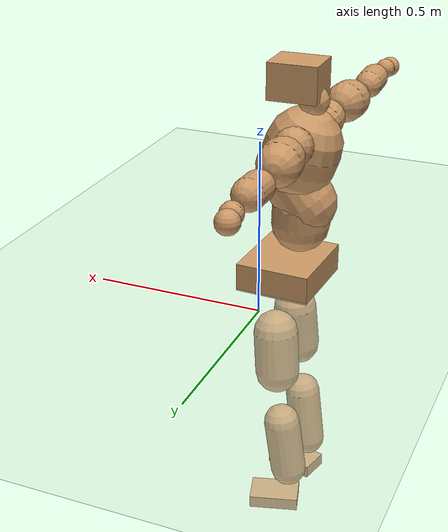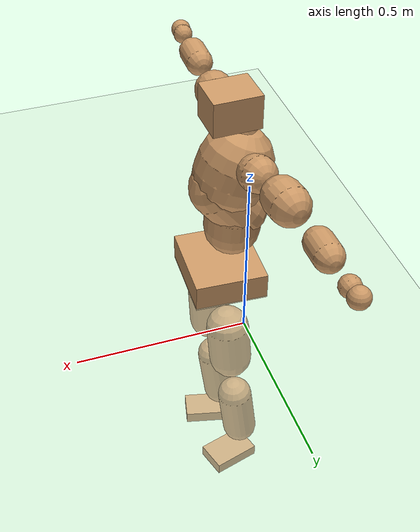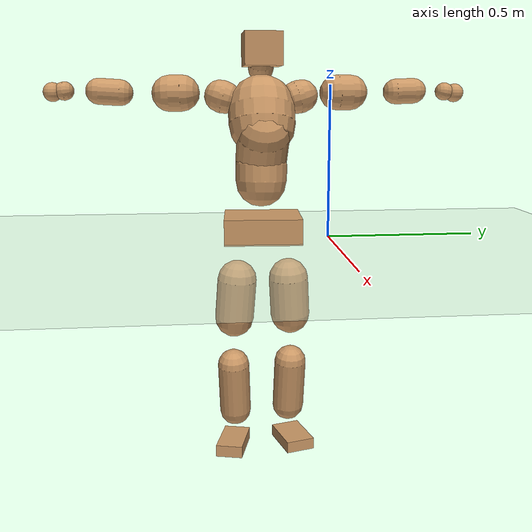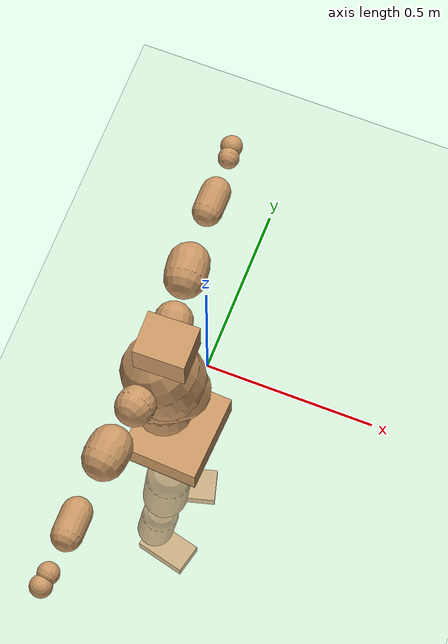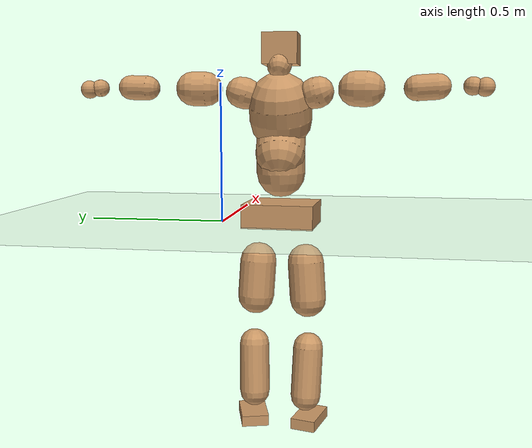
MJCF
<mujoco model="humanoid">
  <compiler coordinate="local" angle="radian"/>
  <default>
    <joint damping="0.0" armature="0.01" stiffness="0.0" limited="true"/>
    <geom conaffinity="1" condim="3" contype="7" margin="0.001" rgba="0.8 0.6 .4 1"/>
  </default>
  <asset>
    <texture type="skybox" builtin="gradient" rgb1=".4 .5 .6" rgb2="0 0 0" width="100" height="100"/>
    <texture builtin="flat" height="1278" mark="cross" markrgb="1 1 1" name="texgeom" random="0.01" rgb1="0.8 0.6 0.4" rgb2="0.8 0.6 0.4" type="cube" width="127"/>
    <texture builtin="checker" height="100" name="texplane" rgb1="0 0 0" rgb2="0.8 0.8 0.8" type="2d" width="100"/>
    <material name="MatPlane" reflectance="0.5" shininess="1" specular="1" texrepeat="60 60" texture="texplane"/>
    <material name="geom" texture="texgeom" texuniform="true"/>
  </asset>
  <worldbody>
    <light cutoff="100" diffuse="1 1 1" dir="-0 0 -1.3" directional="true" exponent="1" pos="0 0 1.3" specular=".1 .1 .1"/>
    <geom conaffinity="1" condim="3" name="floor" pos="0 0 0" rgba="0.8 0.9 0.8 1" size="100 100 .2" type="plane" material="MatPlane"/>
    <body name="Pelvis" pos="0.0001 -0.2224 0.049">
      <freejoint name="Pelvis"/>
      <geom type="box" contype="1" conaffinity="1" density="5359.374547" pos="-0.0038 0.0002 -0.0133" size="0.1108 0.1267 0.0423" quat="0.9997 0.0000 0.0000 -0.0240" name="Pelvis"/>
      <body name="L_Hip" pos="0.0063 0.0823 -0.0934">
        <joint name="L_Hip_x" type="hinge" pos="0 0 0" axis="1 0 0" stiffness="1600" damping="160" armature="0.02" range="-180.0000 180.0000"/>
        <joint name="L_Hip_y" type="hinge" pos="0 0 0" axis="0 1 0" stiffness="1600" damping="160" armature="0.02" range="-180.0000 180.0000"/>
        <joint name="L_Hip_z" type="hinge" pos="0 0 0" axis="0 0 1" stiffness="1600" damping="160" armature="0.02" range="-180.0000 180.0000"/>
        <geom type="capsule" contype="1" conaffinity="1" density="2040.816327" size="0.0664" fromto="-0.0071 0.0053 -0.0960 -0.0167 0.0124 -0.2264" name="L_Hip"/>
        <body name="L_Knee" pos="-0.0238 0.0177 -0.3225">
          <joint name="L_Knee_x" type="hinge" pos="0 0 0" axis="1 0 0" stiffness="1600" damping="160" armature="0.02" range="-180.0000 180.0000"/>
          <joint name="L_Knee_y" type="hinge" pos="0 0 0" axis="0 1 0" stiffness="1600" damping="160" armature="0.02" range="-180.0000 180.0000"/>
          <joint name="L_Knee_z" type="hinge" pos="0 0 0" axis="0 0 1" stiffness="1600" damping="160" armature="0.02" range="-180.0000 180.0000"/>
          <geom type="capsule" contype="1" conaffinity="1" density="1234.567901" size="0.0547" fromto="-0.0114 -0.0022 -0.0839 -0.0350 -0.0069 -0.2581" name="L_Knee"/>
          <body name="L_Ankle" pos="-0.0464 -0.0091 -0.342">
            <joint name="L_Ankle_x" type="hinge" pos="0 0 0" axis="1 0 0" stiffness="1600" damping="160" armature="0.02" range="-180.0000 180.0000"/>
            <joint name="L_Ankle_y" type="hinge" pos="0 0 0" axis="0 1 0" stiffness="1600" damping="160" armature="0.02" range="-180.0000 180.0000"/>
            <joint name="L_Ankle_z" type="hinge" pos="0 0 0" axis="0 0 1" stiffness="1600" damping="160" armature="0.02" range="-180.0000 180.0000"/>
            <geom type="box" contype="1" conaffinity="1" density="1000.000021" pos="0.0522 0.0145 -0.0253" size="0.0756 0.0495 0.0195" quat="0.9908 0.0000 0.0000 0.1353" name="L_Ankle"/>
            <body name="L_Toe" pos="0.1043 0.029 -0.0506">
              <joint name="L_Toe_x" type="hinge" pos="0 0 0" axis="1 0 0" stiffness="1000" damping="100" armature="0.02" range="-180.0000 180.0000"/>
              <joint name="L_Toe_y" type="hinge" pos="0 0 0" axis="0 1 0" stiffness="1000" damping="100" armature="0.02" range="-180.0000 180.0000"/>
              <joint name="L_Toe_z" type="hinge" pos="0 0 0" axis="0 0 1" stiffness="1000" damping="100" armature="0.02" range="-180.0000 180.0000"/>
              <geom type="box" contype="1" conaffinity="1" density="7615059.778896" pos="0.0000 0.0000 0.0254" size="0.001 0.0024 0.001" quat="0.9899 0.0000 0.0000 0.1415" name="L_Toe"/>
            </body>
          </body>
        </body>
      </body>
      <body name="R_Hip" pos="0.0086 -0.0802 -0.0952">
        <joint name="R_Hip_x" type="hinge" pos="0 0 0" axis="1 0 0" stiffness="1600" damping="160" armature="0.02" range="-180.0000 180.0000"/>
        <joint name="R_Hip_y" type="hinge" pos="0 0 0" axis="0 1 0" stiffness="1600" damping="160" armature="0.02" range="-180.0000 180.0000"/>
        <joint name="R_Hip_z" type="hinge" pos="0 0 0" axis="0 0 1" stiffness="1600" damping="160" armature="0.02" range="-180.0000 180.0000"/>
        <geom type="capsule" contype="1" conaffinity="1" density="2040.816327" size="0.0657" fromto="-0.0069 -0.0071 -0.0952 -0.0169 -0.0173 -0.2318" name="R_Hip"/>
        <body name="R_Knee" pos="-0.0238 -0.0245 -0.327">
          <joint name="R_Knee_x" type="hinge" pos="0 0 0" axis="1 0 0" stiffness="1600" damping="160" armature="0.02" range="-180.0000 180.0000"/>
          <joint name="R_Knee_y" type="hinge" pos="0 0 0" axis="0 1 0" stiffness="1600" damping="160" armature="0.02" range="-180.0000 180.0000"/>
          <joint name="R_Knee_z" type="hinge" pos="0 0 0" axis="0 0 1" stiffness="1600" damping="160" armature="0.02" range="-180.0000 180.0000"/>
          <geom type="capsule" contype="1" conaffinity="1" density="1234.567901" size="0.0546" fromto="-0.0111 0.0026 -0.0838 -0.0345 0.0081 -0.2616" name="R_Knee"/>
          <body name="R_Ankle" pos="-0.0456 0.0106 -0.3454">
            <joint name="R_Ankle_x" type="hinge" pos="0 0 0" axis="1 0 0" stiffness="1600" damping="160" armature="0.02" range="-180.0000 180.0000"/>
            <joint name="R_Ankle_y" type="hinge" pos="0 0 0" axis="0 1 0" stiffness="1600" damping="160" armature="0.02" range="-180.0000 180.0000"/>
            <joint name="R_Ankle_z" type="hinge" pos="0 0 0" axis="0 0 1" stiffness="1600" damping="160" armature="0.02" range="-180.0000 180.0000"/>
            <geom type="box" contype="1" conaffinity="1" density="1000.000018" pos="0.0543 -0.0132 -0.0223" size="0.077 0.0454 0.0203" quat="0.9928 0.0000 0.0000 -0.1194" name="R_Ankle"/>
            <body name="R_Toe" pos="0.1085 -0.0265 -0.0446">
              <joint name="R_Toe_x" type="hinge" pos="0 0 0" axis="1 0 0" stiffness="1000" damping="100" armature="0.02" range="-180.0000 180.0000"/>
              <joint name="R_Toe_y" type="hinge" pos="0 0 0" axis="0 1 0" stiffness="1000" damping="100" armature="0.02" range="-180.0000 180.0000"/>
              <joint name="R_Toe_z" type="hinge" pos="0 0 0" axis="0 0 1" stiffness="1000" damping="100" armature="0.02" range="-180.0000 180.0000"/>
              <geom type="box" contype="1" conaffinity="1" density="7465690.890875" pos="0.0000 0.0000 0.0231" size="0.001 0.0023 0.0011" quat="0.9941 0.0000 0.0000 -0.1088" name="R_Toe"/>
            </body>
          </body>
        </body>
      </body>
      <body name="Torso" pos="-0.0378 -0.001 0.1088">
        <joint name="Torso_x" type="hinge" pos="0 0 0" axis="1 0 0" stiffness="2000" damping="200" armature="0.02" range="-180.0000 180.0000"/>
        <joint name="Torso_y" type="hinge" pos="0 0 0" axis="0 1 0" stiffness="2000" damping="200" armature="0.02" range="-180.0000 180.0000"/>
        <joint name="Torso_z" type="hinge" pos="0 0 0" axis="0 0 1" stiffness="2000" damping="200" armature="0.02" range="-180.0000 180.0000"/>
        <geom type="capsule" contype="1" conaffinity="1" density="2040.816327" size="0.0857" fromto="-0.0041 0.0015 0.0856 -0.0014 0.0005 0.0288" name="Torso"/>
        <body name="Spine" pos="-0.0054 0.002 0.1144">
          <joint name="Spine_x" type="hinge" pos="0 0 0" axis="1 0 0" stiffness="2000" damping="200" armature="0.02" range="-180.0000 180.0000"/>
          <joint name="Spine_y" type="hinge" pos="0 0 0" axis="0 1 0" stiffness="2000" damping="200" armature="0.02" range="-180.0000 180.0000"/>
          <joint name="Spine_z" type="hinge" pos="0 0 0" axis="0 0 1" stiffness="2000" damping="200" armature="0.02" range="-180.0000 180.0000"/>
          <geom type="capsule" contype="1" conaffinity="1" density="2040.816327" size="0.0864" fromto="0.0521 0.0025 0.0689 -0.0152 -0.0007 -0.0201" name="Spine"/>
          <body name="Chest" pos="0.0369 0.0018 0.0487">
            <joint name="Chest_x" type="hinge" pos="0 0 0" axis="1 0 0" stiffness="2000" damping="200" armature="0.02" range="-180.0000 180.0000"/>
            <joint name="Chest_y" type="hinge" pos="0 0 0" axis="0 1 0" stiffness="2000" damping="200" armature="0.02" range="-180.0000 180.0000"/>
            <joint name="Chest_z" type="hinge" pos="0 0 0" axis="0 0 1" stiffness="2000" damping="200" armature="0.02" range="-180.0000 180.0000"/>
            <geom type="capsule" contype="1" conaffinity="1" density="2040.816327" size="0.1103" fromto="-0.0383 -0.0003 0.1035 -0.0199 -0.0002 0.0538" name="Chest"/>
            <body name="Neck" pos="-0.0778 -0.0001 0.2161">
              <joint name="Neck_x" type="hinge" pos="0 0 0" axis="1 0 0" stiffness="1000" damping="100" armature="0.02" range="-180.0000 180.0000"/>
              <joint name="Neck_y" type="hinge" pos="0 0 0" axis="0 1 0" stiffness="1000" damping="100" armature="0.02" range="-180.0000 180.0000"/>
              <joint name="Neck_z" type="hinge" pos="0 0 0" axis="0 0 1" stiffness="1000" damping="100" armature="0.02" range="-180.0000 180.0000"/>
              <geom type="capsule" contype="1" conaffinity="1" density="1000" size="0.0421" fromto="0.0268 -0.0007 0.0325 0.0133 -0.0004 0.0161" name="Neck"/>
              <body name="Head" pos="0.04 -0.0011 0.0486">
                <joint name="Head_x" type="hinge" pos="0 0 0" axis="1 0 0" stiffness="1000" damping="100" armature="0.02" range="-180.0000 180.0000"/>
                <joint name="Head_y" type="hinge" pos="0 0 0" axis="0 1 0" stiffness="1000" damping="100" armature="0.02" range="-180.0000 180.0000"/>
                <joint name="Head_z" type="hinge" pos="0 0 0" axis="0 0 1" stiffness="1000" damping="100" armature="0.02" range="-180.0000 180.0000"/>
                <geom type="box" contype="1" conaffinity="1" density="2250.000093" pos="0.0210 0.0005 0.0253" size="0.0721 0.0605 0.0525" quat="0.9999 0.0000 0.0000 0.0108" name="Head"/>
              </body>
            </body>
            <body name="L_Thorax" pos="-0.046 0.0821 0.1284">
              <joint name="L_Thorax_x" type="hinge" pos="0 0 0" axis="1 0 0" stiffness="1000" damping="100" armature="0.02" range="-180.0000 180.0000"/>
              <joint name="L_Thorax_y" type="hinge" pos="0 0 0" axis="0 1 0" stiffness="1000" damping="100" armature="0.02" range="-180.0000 180.0000"/>
              <joint name="L_Thorax_z" type="hinge" pos="0 0 0" axis="0 0 1" stiffness="1000" damping="100" armature="0.02" range="-180.0000 180.0000"/>
              <geom type="capsule" contype="1" conaffinity="1" density="1000" size="0.0541" fromto="-0.0077 0.0513 0.0156 -0.0052 0.0347 0.0106" name="L_Thorax"/>
              <body name="L_Shoulder" pos="-0.0129 0.086 0.0262">
                <joint name="L_Shoulder_x" type="hinge" pos="0 0 0" axis="1 0 0" stiffness="1000" damping="100" armature="0.02" range="-720.0000 720.0000"/>
                <joint name="L_Shoulder_y" type="hinge" pos="0 0 0" axis="0 1 0" stiffness="1000" damping="100" armature="0.02" range="-720.0000 720.0000"/>
                <joint name="L_Shoulder_z" type="hinge" pos="0 0 0" axis="0 0 1" stiffness="1000" damping="100" armature="0.02" range="-720.0000 720.0000"/>
                <geom type="capsule" contype="1" conaffinity="1" density="1000" size="0.059" fromto="-0.0108 0.0883 0.0008 -0.0160 0.1314 0.0013" name="L_Shoulder"/>
                <body name="L_Elbow" pos="-0.0268 0.2197 0.0021">
                  <joint name="L_Elbow_x" type="hinge" pos="0 0 0" axis="1 0 0" stiffness="1000" damping="100" armature="0.02" range="-720.0000 720.0000"/>
                  <joint name="L_Elbow_y" type="hinge" pos="0 0 0" axis="0 1 0" stiffness="1000" damping="100" armature="0.02" range="-720.0000 720.0000"/>
                  <joint name="L_Elbow_z" type="hinge" pos="0 0 0" axis="0 0 1" stiffness="1000" damping="100" armature="0.02" range="-720.0000 720.0000"/>
                  <geom type="capsule" contype="1" conaffinity="1" density="1000" size="0.0421" fromto="0.0007 0.0721 0.0024 0.0013 0.1338 0.0045" name="L_Elbow"/>
                  <body name="L_Wrist" pos="0.002 0.2059 0.0069">
                    <joint name="L_Wrist_x" type="hinge" pos="0 0 0" axis="1 0 0" stiffness="600" damping="60" armature="0.02" range="-180.0000 180.0000"/>
                    <joint name="L_Wrist_y" type="hinge" pos="0 0 0" axis="0 1 0" stiffness="600" damping="60" armature="0.02" range="-180.0000 180.0000"/>
                    <joint name="L_Wrist_z" type="hinge" pos="0 0 0" axis="0 0 1" stiffness="600" damping="60" armature="0.02" range="-180.0000 180.0000"/>
                    <geom type="capsule" contype="1" conaffinity="1" density="1000" size="0.0298" fromto="-0.0059 0.0370 -0.0042 -0.0062 0.0389 -0.0045" name="L_Wrist"/>
                    <body name="L_Hand" pos="-0.0122 0.0759 -0.0087">
                      <joint name="L_Hand_x" type="hinge" pos="0 0 0" axis="1 0 0" stiffness="600" damping="60" armature="0.02" range="-180.0000 180.0000"/>
                      <joint name="L_Hand_y" type="hinge" pos="0 0 0" axis="0 1 0" stiffness="600" damping="60" armature="0.02" range="-180.0000 180.0000"/>
                      <joint name="L_Hand_z" type="hinge" pos="0 0 0" axis="0 0 1" stiffness="600" damping="60" armature="0.02" range="-180.0000 180.0000"/>
                      <geom type="sphere" contype="1" conaffinity="1" density="1000" size="0.0310" pos="0.0000 0.0000 0.0000" name="L_Hand"/>
                    </body>
                  </body>
                </body>
              </body>
            </body>
            <body name="R_Thorax" pos="-0.0508 -0.0836 0.1274">
              <joint name="R_Thorax_x" type="hinge" pos="0 0 0" axis="1 0 0" stiffness="1000" damping="100" armature="0.02" range="-180.0000 180.0000"/>
              <joint name="R_Thorax_y" type="hinge" pos="0 0 0" axis="0 1 0" stiffness="1000" damping="100" armature="0.02" range="-180.0000 180.0000"/>
              <joint name="R_Thorax_z" type="hinge" pos="0 0 0" axis="0 0 1" stiffness="1000" damping="100" armature="0.02" range="-180.0000 180.0000"/>
              <geom type="capsule" contype="1" conaffinity="1" density="1000" size="0.0535" fromto="-0.0074 -0.0505 0.0161 -0.0056 -0.0382 0.0122" name="R_Thorax"/>
              <body name="R_Shoulder" pos="-0.0129 -0.0888 0.0283">
                <joint name="R_Shoulder_x" type="hinge" pos="0 0 0" axis="1 0 0" stiffness="1000" damping="100" armature="0.02" range="-720.0000 720.0000"/>
                <joint name="R_Shoulder_y" type="hinge" pos="0 0 0" axis="0 1 0" stiffness="1000" damping="100" armature="0.02" range="-720.0000 720.0000"/>
                <joint name="R_Shoulder_z" type="hinge" pos="0 0 0" axis="0 0 1" stiffness="1000" damping="100" armature="0.02" range="-720.0000 720.0000"/>
                <geom type="capsule" contype="1" conaffinity="1" density="1000" size="0.0598" fromto="-0.0088 -0.0893 -0.0022 -0.0126 -0.1271 -0.0031" name="R_Shoulder"/>
                <body name="R_Elbow" pos="-0.0214 -0.2164 -0.0052">
                  <joint name="R_Elbow_x" type="hinge" pos="0 0 0" axis="1 0 0" stiffness="1000" damping="100" armature="0.02" range="-720.0000 720.0000"/>
                  <joint name="R_Elbow_y" type="hinge" pos="0 0 0" axis="0 1 0" stiffness="1000" damping="100" armature="0.02" range="-720.0000 720.0000"/>
                  <joint name="R_Elbow_z" type="hinge" pos="0 0 0" axis="0 0 1" stiffness="1000" damping="100" armature="0.02" range="-720.0000 720.0000"/>
                  <geom type="capsule" contype="1" conaffinity="1" density="1000" size="0.0425" fromto="0.0004 -0.0723 0.0043 0.0008 -0.1410 0.0083" name="R_Elbow"/>
                  <body name="R_Wrist" pos="0.0012 -0.2134 0.0126">
                    <joint name="R_Wrist_x" type="hinge" pos="0 0 0" axis="1 0 0" stiffness="600" damping="60" armature="0.02" range="-180.0000 180.0000"/>
                    <joint name="R_Wrist_y" type="hinge" pos="0 0 0" axis="0 1 0" stiffness="600" damping="60" armature="0.02" range="-180.0000 180.0000"/>
                    <joint name="R_Wrist_z" type="hinge" pos="0 0 0" axis="0 0 1" stiffness="600" damping="60" armature="0.02" range="-180.0000 180.0000"/>
                    <geom type="capsule" contype="1" conaffinity="1" density="1000" size="0.0304" fromto="-0.0049 -0.0370 -0.0032 -0.0051 -0.0390 -0.0034" name="R_Wrist"/>
                    <body name="R_Hand" pos="-0.01 -0.076 -0.0066">
                      <joint name="R_Hand_x" type="hinge" pos="0 0 0" axis="1 0 0" stiffness="600" damping="60" armature="0.02" range="-180.0000 180.0000"/>
                      <joint name="R_Hand_y" type="hinge" pos="0 0 0" axis="0 1 0" stiffness="600" damping="60" armature="0.02" range="-180.0000 180.0000"/>
                      <joint name="R_Hand_z" type="hinge" pos="0 0 0" axis="0 0 1" stiffness="600" damping="60" armature="0.02" range="-180.0000 180.0000"/>
                      <geom type="sphere" contype="1" conaffinity="1" density="1000" size="0.0311" pos="0.0000 0.0000 0.0000" name="R_Hand"/>
                    </body>
                  </body>
                </body>
              </body>
            </body>
          </body>
        </body>
      </body>
    </body>
  </worldbody>
  <actuator>
    <motor name="L_Hip_x" joint="L_Hip_x" gear="500"/>
    <motor name="L_Hip_y" joint="L_Hip_y" gear="500"/>
    <motor name="L_Hip_z" joint="L_Hip_z" gear="500"/>
    <motor name="L_Knee_x" joint="L_Knee_x" gear="500"/>
    <motor name="L_Knee_y" joint="L_Knee_y" gear="500"/>
    <motor name="L_Knee_z" joint="L_Knee_z" gear="500"/>
    <motor name="L_Ankle_x" joint="L_Ankle_x" gear="500"/>
    <motor name="L_Ankle_y" joint="L_Ankle_y" gear="500"/>
    <motor name="L_Ankle_z" joint="L_Ankle_z" gear="500"/>
    <motor name="L_Toe_x" joint="L_Toe_x" gear="500"/>
    <motor name="L_Toe_y" joint="L_Toe_y" gear="500"/>
    <motor name="L_Toe_z" joint="L_Toe_z" gear="500"/>
    <motor name="R_Hip_x" joint="R_Hip_x" gear="500"/>
    <motor name="R_Hip_y" joint="R_Hip_y" gear="500"/>
    <motor name="R_Hip_z" joint="R_Hip_z" gear="500"/>
    <motor name="R_Knee_x" joint="R_Knee_x" gear="500"/>
    <motor name="R_Knee_y" joint="R_Knee_y" gear="500"/>
    <motor name="R_Knee_z" joint="R_Knee_z" gear="500"/>
    <motor name="R_Ankle_x" joint="R_Ankle_x" gear="500"/>
    <motor name="R_Ankle_y" joint="R_Ankle_y" gear="500"/>
    <motor name="R_Ankle_z" joint="R_Ankle_z" gear="500"/>
    <motor name="R_Toe_x" joint="R_Toe_x" gear="500"/>
    <motor name="R_Toe_y" joint="R_Toe_y" gear="500"/>
    <motor name="R_Toe_z" joint="R_Toe_z" gear="500"/>
    <motor name="Torso_x" joint="Torso_x" gear="500"/>
    <motor name="Torso_y" joint="Torso_y" gear="500"/>
    <motor name="Torso_z" joint="Torso_z" gear="500"/>
    <motor name="Spine_x" joint="Spine_x" gear="500"/>
    <motor name="Spine_y" joint="Spine_y" gear="500"/>
    <motor name="Spine_z" joint="Spine_z" gear="500"/>
    <motor name="Chest_x" joint="Chest_x" gear="500"/>
    <motor name="Chest_y" joint="Chest_y" gear="500"/>
    <motor name="Chest_z" joint="Chest_z" gear="500"/>
    <motor name="Neck_x" joint="Neck_x" gear="500"/>
    <motor name="Neck_y" joint="Neck_y" gear="500"/>
    <motor name="Neck_z" joint="Neck_z" gear="500"/>
    <motor name="Head_x" joint="Head_x" gear="500"/>
    <motor name="Head_y" joint="Head_y" gear="500"/>
    <motor name="Head_z" joint="Head_z" gear="500"/>
    <motor name="L_Thorax_x" joint="L_Thorax_x" gear="500"/>
    <motor name="L_Thorax_y" joint="L_Thorax_y" gear="500"/>
    <motor name="L_Thorax_z" joint="L_Thorax_z" gear="500"/>
    <motor name="L_Shoulder_x" joint="L_Shoulder_x" gear="500"/>
    <motor name="L_Shoulder_y" joint="L_Shoulder_y" gear="500"/>
    <motor name="L_Shoulder_z" joint="L_Shoulder_z" gear="500"/>
    <motor name="L_Elbow_x" joint="L_Elbow_x" gear="500"/>
    <motor name="L_Elbow_y" joint="L_Elbow_y" gear="500"/>
    <motor name="L_Elbow_z" joint="L_Elbow_z" gear="500"/>
    <motor name="L_Wrist_x" joint="L_Wrist_x" gear="500"/>
    <motor name="L_Wrist_y" joint="L_Wrist_y" gear="500"/>
    <motor name="L_Wrist_z" joint="L_Wrist_z" gear="500"/>
    <motor name="L_Hand_x" joint="L_Hand_x" gear="500"/>
    <motor name="L_Hand_y" joint="L_Hand_y" gear="500"/>
    <motor name="L_Hand_z" joint="L_Hand_z" gear="500"/>
    <motor name="R_Thorax_x" joint="R_Thorax_x" gear="500"/>
    <motor name="R_Thorax_y" joint="R_Thorax_y" gear="500"/>
    <motor name="R_Thorax_z" joint="R_Thorax_z" gear="500"/>
    <motor name="R_Shoulder_x" joint="R_Shoulder_x" gear="500"/>
    <motor name="R_Shoulder_y" joint="R_Shoulder_y" gear="500"/>
    <motor name="R_Shoulder_z" joint="R_Shoulder_z" gear="500"/>
    <motor name="R_Elbow_x" joint="R_Elbow_x" gear="500"/>
    <motor name="R_Elbow_y" joint="R_Elbow_y" gear="500"/>
    <motor name="R_Elbow_z" joint="R_Elbow_z" gear="500"/>
    <motor name="R_Wrist_x" joint="R_Wrist_x" gear="500"/>
    <motor name="R_Wrist_y" joint="R_Wrist_y" gear="500"/>
    <motor name="R_Wrist_z" joint="R_Wrist_z" gear="500"/>
    <motor name="R_Hand_x" joint="R_Hand_x" gear="500"/>
    <motor name="R_Hand_y" joint="R_Hand_y" gear="500"/>
    <motor name="R_Hand_z" joint="R_Hand_z" gear="500"/>
  </actuator>
  <contact>
    <exclude body1="Torso" body2="Chest"/>
    <exclude body1="Head" body2="Chest"/>
    <exclude body1="R_Knee" body2="R_Toe"/>
    <exclude body1="R_Knee" body2="L_Ankle"/>
    <exclude body1="R_Knee" body2="L_Toe"/>
    <exclude body1="L_Knee" body2="L_Toe"/>
    <exclude body1="L_Knee" body2="R_Ankle"/>
    <exclude body1="L_Knee" body2="R_Toe"/>
    <exclude body1="L_Shoulder" body2="Chest"/>
    <exclude body1="R_Shoulder" body2="Chest"/>
  </contact>
  <sensor/>
  <size njmax="700" nconmax="700"/>
</mujoco>
